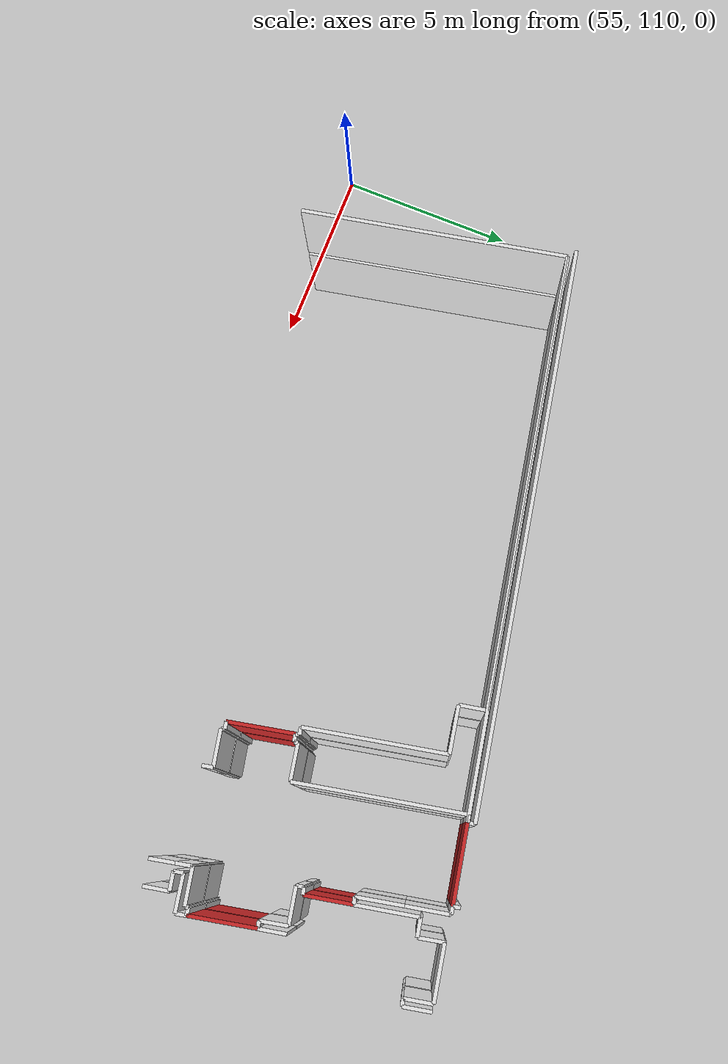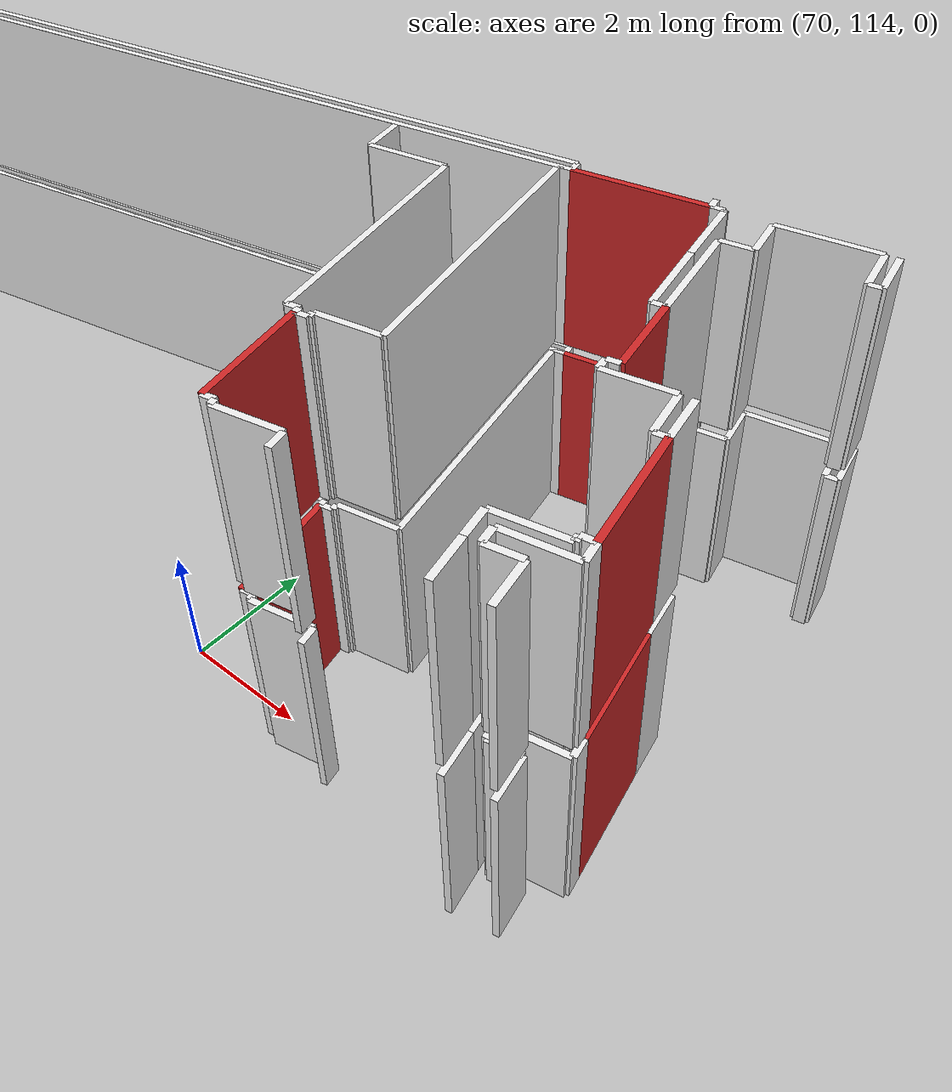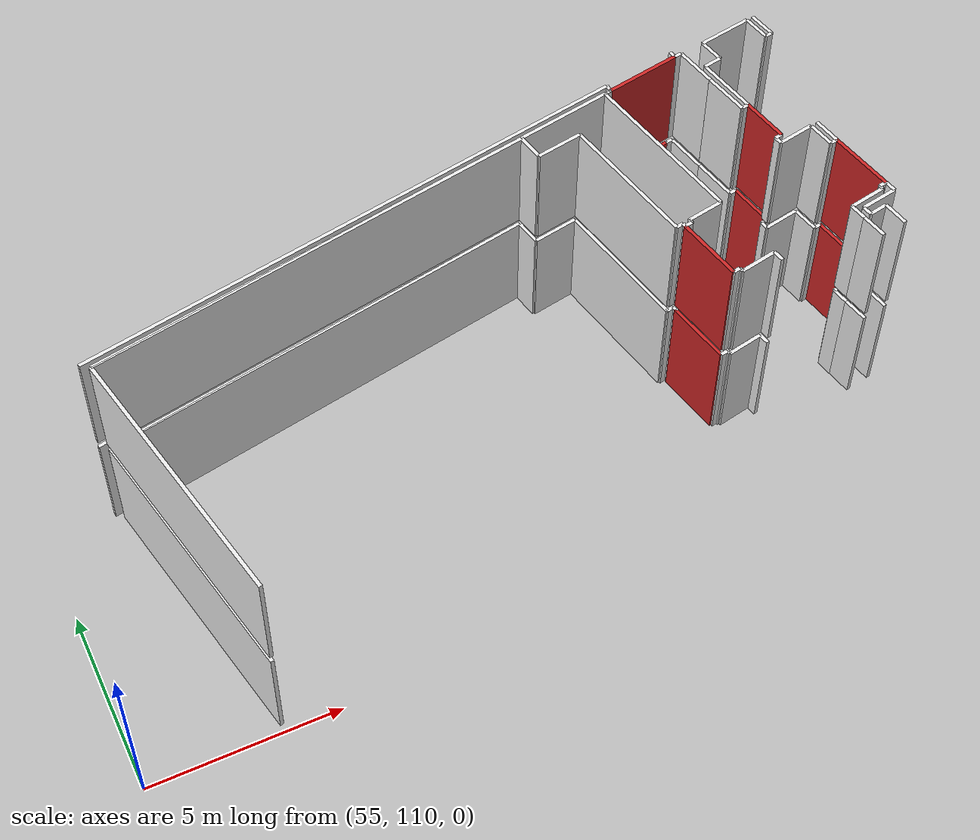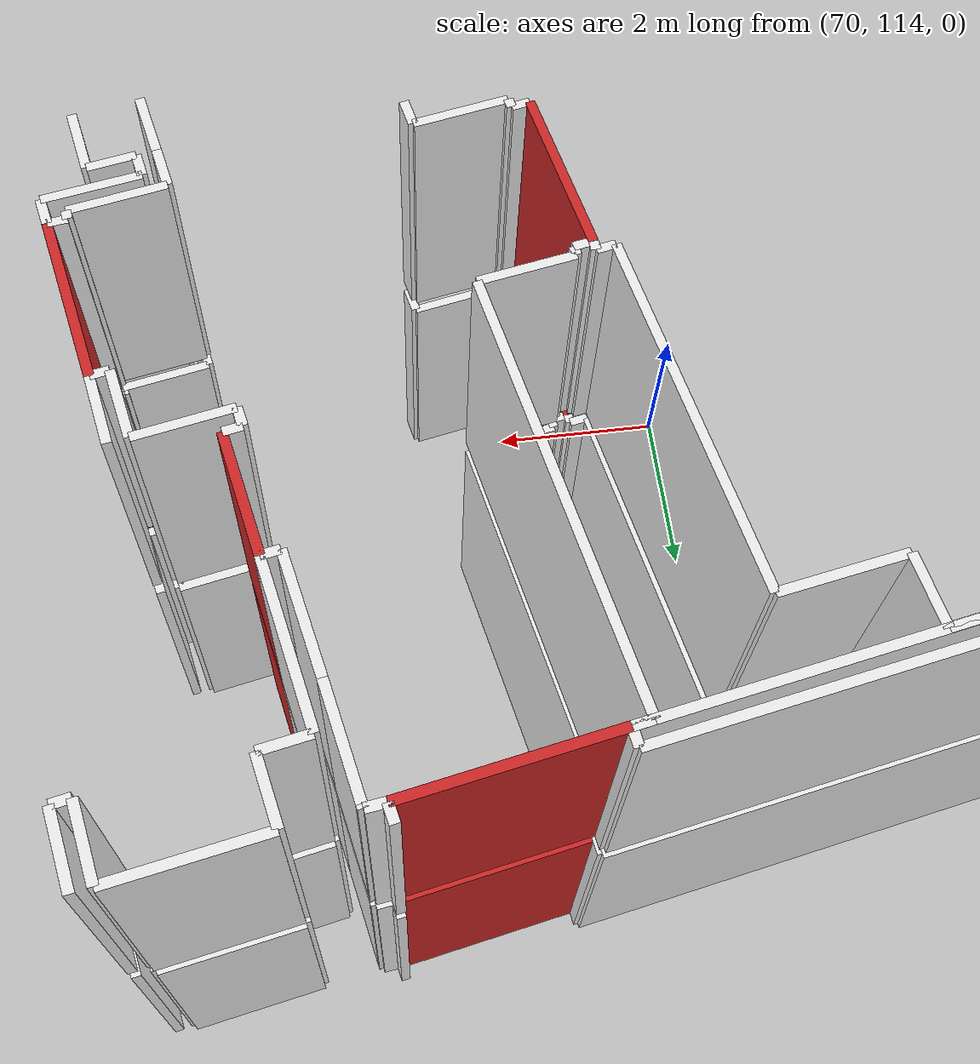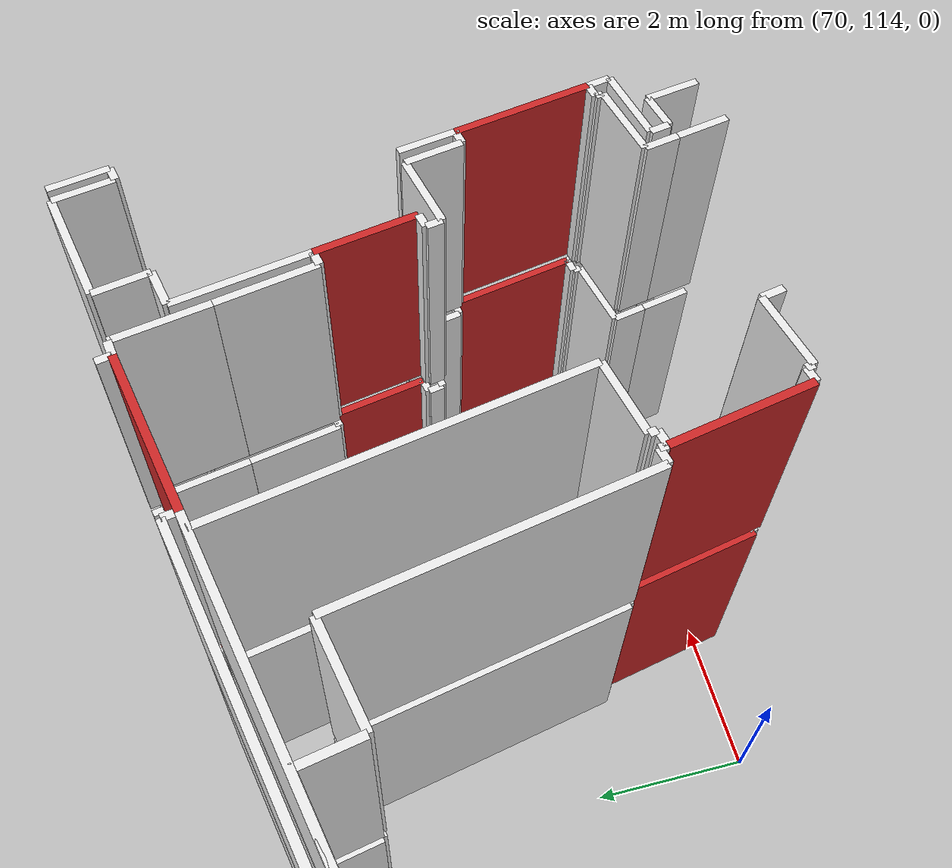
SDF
<sdf version="1.6">
 <world name="default">
  <model name="wall_71.7_114.6_0.0">
   <static>true</static>
   <pose>71.72999999998137 114.55000000004657 1.5 0 0 -1.3690339825092397</pose>
   <link name="link">
    <visual name="visual">
     <geometry><box><size>1.796440926065282 0.1 3</size></box></geometry>
     <material>
      <script><uri>file://media/materials/scripts/gazebo.material</uri><name>Gazebo/Red</name></script>
     </material>
    </visual>
   </link>
  </model>
  <model name="wall_76.5_115.5_0.0">
   <static>true</static>
   <pose>76.53999999997905 115.50500000012107 1.5 0 0 -1.3701434494846443</pose>
   <link name="link">
    <visual name="visual">
     <geometry><box><size>1.8062391868343128 0.1 3</size></box></geometry>
     <material>
      <script><uri>file://media/materials/scripts/gazebo.material</uri><name>Gazebo/Red</name></script>
     </material>
    </visual>
   </link>
  </model>
  <model name="wall_75.1_117.8_0.0">
   <static>true</static>
   <pose>75.06500000000233 117.75500000012107 1.5 0 0 -1.376431060702658</pose>
   <link name="link">
    <visual name="visual">
     <geometry><box><size>1.2943724348298333 0.1 3</size></box></geometry>
     <material>
      <script><uri>file://media/materials/scripts/gazebo.material</uri><name>Gazebo/Red</name></script>
     </material>
    </visual>
   </link>
  </model>
  <model name="wall_73.0_120.5_0.0">
   <static>true</static>
   <pose>73.04000000000815 120.50499999988824 1.5 0 0 0.19646185337495456</pose>
   <link name="link">
    <visual name="visual">
     <geometry><box><size>2.100404722931416 0.1 3</size></box></geometry>
     <material>
      <script><uri>file://media/materials/scripts/gazebo.material</uri><name>Gazebo/Red</name></script>
     </material>
    </visual>
   </link>
  </model>
  <model name="wall_71.5_115.5_0.0">
   <static>true</static>
   <pose>71.5449999999837 115.47999999998137 1.5 0 0 1.6704649797471094</pose>
   <link name="link">
    <visual name="visual">
     <geometry><box><size>0.10049875584145537 0.1 3</size></box></geometry>
     <material>
      <script><uri>file://media/materials/scripts/gazebo.material</uri><name>Gazebo/White</name></script>
     </material>
    </visual>
   </link>
  </model>
  <model name="wall_71.4_115.5_0.0">
   <static>true</static>
   <pose>71.44000000000233 115.51000000000931 1.5 0 0 -2.944197095754793</pose>
   <link name="link">
    <visual name="visual">
     <geometry><box><size>0.20396078041403173 0.1 3</size></box></geometry>
     <material>
      <script><uri>file://media/materials/scripts/gazebo.material</uri><name>Gazebo/White</name></script>
     </material>
    </visual>
   </link>
  </model>
  <model name="wall_71.0_117.4_0.0">
   <static>true</static>
   <pose>70.96500000002561 117.37000000011176 1.5 0 0 1.7676803777493852</pose>
   <link name="link">
    <visual name="visual">
     <geometry><box><size>3.834070943308059 0.1 3</size></box></geometry>
     <material>
      <script><uri>file://media/materials/scripts/gazebo.material</uri><name>Gazebo/White</name></script>
     </material>
    </visual>
   </link>
  </model>
  <model name="wall_70.0_119.1_0.0">
   <static>true</static>
   <pose>69.96500000002561 119.12999999988824 1.5 0 0 -2.9519011013949563</pose>
   <link name="link">
    <visual name="visual">
     <geometry><box><size>1.2728314892817856 0.1 3</size></box></geometry>
     <material>
      <script><uri>file://media/materials/scripts/gazebo.material</uri><name>Gazebo/White</name></script>
     </material>
    </visual>
   </link>
  </model>
  <model name="wall_69.3_119.4_0.0">
   <static>true</static>
   <pose>69.27000000001863 119.375 1.5 0 0 1.760276484581226</pose>
   <link name="link">
    <visual name="visual">
     <geometry><box><size>0.7433034378075905 0.1 3</size></box></geometry>
     <material>
      <script><uri>file://media/materials/scripts/gazebo.material</uri><name>Gazebo/White</name></script>
     </material>
    </visual>
   </link>
  </model>
  <model name="wall_63.1_118.5_0.0">
   <static>true</static>
   <pose>63.14500000001863 118.54500000015832 1.5 0 0 -2.9467391918441352</pose>
   <link name="link">
    <visual name="visual">
     <geometry><box><size>12.343589429346915 0.1 3</size></box></geometry>
     <material>
      <script><uri>file://media/materials/scripts/gazebo.material</uri><name>Gazebo/White</name></script>
     </material>
    </visual>
   </link>
  </model>
  <model name="wall_57.8_113.8_0.0">
   <static>true</static>
   <pose>57.80000000001746 113.78500000014901 1.5 0 0 -1.3742100465085676</pose>
   <link name="link">
    <visual name="visual">
     <geometry><box><size>7.270027510151529 0.1 3</size></box></geometry>
     <material>
      <script><uri>file://media/materials/scripts/gazebo.material</uri><name>Gazebo/White</name></script>
     </material>
    </visual>
   </link>
  </model>
  <model name="wall_76.8_114.5_0.0">
   <static>true</static>
   <pose>76.75 114.47500000009313 1.5 0 0 -1.3667783470430568</pose>
   <link name="link">
    <visual name="visual">
     <geometry><box><size>0.2961418579470187 0.1 3</size></box></geometry>
     <material>
      <script><uri>file://media/materials/scripts/gazebo.material</uri><name>Gazebo/White</name></script>
     </material>
    </visual>
   </link>
  </model>
  <model name="wall_76.3_114.2_0.0">
   <static>true</static>
   <pose>76.28500000000349 114.23500000010245 1.5 0 0 -2.9519790378789845</pose>
   <link name="link">
    <visual name="visual">
     <geometry><box><size>1.0080674580977094 0.1 3</size></box></geometry>
     <material>
      <script><uri>file://media/materials/scripts/gazebo.material</uri><name>Gazebo/White</name></script>
     </material>
    </visual>
   </link>
  </model>
  <model name="wall_75.8_114.0_0.0">
   <static>true</static>
   <pose>75.81500000000233 114.01500000013039 1.5 0 0 -1.3734007667659154</pose>
   <link name="link">
    <visual name="visual">
     <geometry><box><size>0.2549509756887716 0.1 3</size></box></geometry>
     <material>
      <script><uri>file://media/materials/scripts/gazebo.material</uri><name>Gazebo/White</name></script>
     </material>
    </visual>
   </link>
  </model>
  <model name="wall_76.1_113.9_0.0">
   <static>true</static>
   <pose>76.08500000002095 113.94000000017695 1.5 0 0 0.2013171085608308</pose>
   <link name="link">
    <visual name="visual">
     <geometry><box><size>0.5000999900114971 0.1 3</size></box></geometry>
     <material>
      <script><uri>file://media/materials/scripts/gazebo.material</uri><name>Gazebo/White</name></script>
     </material>
    </visual>
   </link>
  </model>
  <model name="wall_76.4_113.7_0.0">
   <static>true</static>
   <pose>76.39500000001863 113.6500000001397 1.5 0 0 -1.3818991459561358</pose>
   <link name="link">
    <visual name="visual">
     <geometry><box><size>0.6923149573923696 0.1 3</size></box></geometry>
     <material>
      <script><uri>file://media/materials/scripts/gazebo.material</uri><name>Gazebo/White</name></script>
     </material>
    </visual>
   </link>
  </model>
  <model name="wall_76.3_116.8_0.0">
   <static>true</static>
   <pose>76.28999999997905 116.75500000012107 1.5 0 0 -1.3813161688905715</pose>
   <link name="link">
    <visual name="visual">
     <geometry><box><size>0.7433034373502634 0.1 3</size></box></geometry>
     <material>
      <script><uri>file://media/materials/scripts/gazebo.material</uri><name>Gazebo/White</name></script>
     </material>
    </visual>
   </link>
  </model>
  <model name="wall_76.5_120.8_0.0">
   <static>true</static>
   <pose>76.51500000001397 120.75499999988824 1.5 0 0 -1.3734007669151658</pose>
   <link name="link">
    <visual name="visual">
     <geometry><box><size>0.764852927043484 0.1 3</size></box></geometry>
     <material>
      <script><uri>file://media/materials/scripts/gazebo.material</uri><name>Gazebo/White</name></script>
     </material>
    </visual>
   </link>
  </model>
  <model name="wall_76.7_120.4_0.0">
   <static>true</static>
   <pose>76.68500000002678 120.39999999990687 1.5 0 0 0.20749622662047904</pose>
   <link name="link">
    <visual name="visual">
     <geometry><box><size>0.19416487839942884 0.1 3</size></box></geometry>
     <material>
      <script><uri>file://media/materials/scripts/gazebo.material</uri><name>Gazebo/White</name></script>
     </material>
    </visual>
   </link>
  </model>
  <model name="wall_76.7_120.8_0.0">
   <static>true</static>
   <pose>76.7050000000163 120.7949999999255 1.5 0 0 1.7681918866746276</pose>
   <link name="link">
    <visual name="visual">
     <geometry><box><size>0.764852927043484 0.1 3</size></box></geometry>
     <material>
      <script><uri>file://media/materials/scripts/gazebo.material</uri><name>Gazebo/White</name></script>
     </material>
    </visual>
   </link>
  </model>
  <model name="wall_74.8_119.2_0.0">
   <static>true</static>
   <pose>74.77499999999418 119.22500000009313 1.5 0 0 1.7658877432748503</pose>
   <link name="link">
    <visual name="visual">
     <geometry><box><size>1.7022925717284638 0.1 3</size></box></geometry>
     <material>
      <script><uri>file://media/materials/scripts/gazebo.material</uri><name>Gazebo/White</name></script>
     </material>
    </visual>
   </link>
  </model>
  <model name="wall_74.9_120.1_0.0">
   <static>true</static>
   <pose>74.85499999998137 120.11000000010245 1.5 0 0 0.2013171085608308</pose>
   <link name="link">
    <visual name="visual">
     <geometry><box><size>0.5000999900114971 0.1 3</size></box></geometry>
     <material>
      <script><uri>file://media/materials/scripts/gazebo.material</uri><name>Gazebo/White</name></script>
     </material>
    </visual>
   </link>
  </model>
  <model name="wall_75.0_120.5_0.0">
   <static>true</static>
   <pose>75.02999999999884 120.5 1.5 0 0 1.7738415440725144</pose>
   <link name="link">
    <visual name="visual">
     <geometry><box><size>0.6942621980075696 0.1 3</size></box></geometry>
     <material>
      <script><uri>file://media/materials/scripts/gazebo.material</uri><name>Gazebo/White</name></script>
     </material>
    </visual>
   </link>
  </model>
  <model name="wall_75.7_121.0_0.0">
   <static>true</static>
   <pose>75.70000000001164 120.98499999986961 1.5 0 0 0.19349440931601616</pose>
   <link name="link">
    <visual name="visual">
     <geometry><box><size>1.508144555394632 0.1 3</size></box></geometry>
     <material>
      <script><uri>file://media/materials/scripts/gazebo.material</uri><name>Gazebo/White</name></script>
     </material>
    </visual>
   </link>
  </model>
  <model name="wall_73.1_113.7_0.0">
   <static>true</static>
   <pose>73.12999999997555 113.66500000003725 1.5 0 0 1.7748143063542596</pose>
   <link name="link">
    <visual name="visual">
     <geometry><box><size>0.2961418579352255 0.1 3</size></box></geometry>
     <material>
      <script><uri>file://media/materials/scripts/gazebo.material</uri><name>Gazebo/White</name></script>
     </material>
    </visual>
   </link>
  </model>
  <model name="wall_72.6_113.7_0.0">
   <static>true</static>
   <pose>72.60999999998603 113.70999999996275 1.5 0 0 -2.9402755450289626</pose>
   <link name="link">
    <visual name="visual">
     <geometry><box><size>1.0001999800229942 0.1 3</size></box></geometry>
     <material>
      <script><uri>file://media/materials/scripts/gazebo.material</uri><name>Gazebo/White</name></script>
     </material>
    </visual>
   </link>
  </model>
  <model name="wall_72.1_113.7_0.0">
   <static>true</static>
   <pose>72.10999999998603 113.65999999991618 1.5 0 0 1.7681918866447774</pose>
   <link name="link">
    <visual name="visual">
     <geometry><box><size>0.10198039036683233 0.1 3</size></box></geometry>
     <material>
      <script><uri>file://media/materials/scripts/gazebo.material</uri><name>Gazebo/White</name></script>
     </material>
    </visual>
   </link>
  </model>
  <model name="wall_72.0_113.7_0.0">
   <static>true</static>
   <pose>72.00499999997555 113.68999999994412 1.5 0 0 -2.9340964269693144</pose>
   <link name="link">
    <visual name="visual">
     <geometry><box><size>0.19416487839942884 0.1 3</size></box></geometry>
     <material>
      <script><uri>file://media/materials/scripts/gazebo.material</uri><name>Gazebo/White</name></script>
     </material>
    </visual>
   </link>
  </model>
  <model name="wall_71.6_115.5_0.0">
   <static>true</static>
   <pose>71.64999999999418 115.45000000018626 1.5 0 0 0.19739556001778746</pose>
   <link name="link">
    <visual name="visual">
     <geometry><box><size>0.20396078056243275 0.1 3</size></box></geometry>
     <material>
      <script><uri>file://media/materials/scripts/gazebo.material</uri><name>Gazebo/White</name></script>
     </material>
    </visual>
   </link>
  </model>
  <model name="wall_71.7_115.5_0.0">
   <static>true</static>
   <pose>71.73999999999069 115.52000000001863 1.5 0 0 1.7681918875402798</pose>
   <link name="link">
    <visual name="visual">
     <geometry><box><size>0.10198038991021388 0.1 3</size></box></geometry>
     <material>
      <script><uri>file://media/materials/scripts/gazebo.material</uri><name>Gazebo/White</name></script>
     </material>
    </visual>
   </link>
  </model>
  <model name="wall_72.2_115.7_0.0">
   <static>true</static>
   <pose>72.22000000000116 115.66499999980442 1.5 0 0 0.19150171840711785</pose>
   <link name="link">
    <visual name="visual">
     <geometry><box><size>0.9982484660926583 0.1 3</size></box></geometry>
     <material>
      <script><uri>file://media/materials/scripts/gazebo.material</uri><name>Gazebo/White</name></script>
     </material>
    </visual>
   </link>
  </model>
  <model name="wall_72.3_118.0_0.0">
   <static>true</static>
   <pose>72.26500000001397 117.98999999999069 1.5 0 0 1.7677606663024836</pose>
   <link name="link">
    <visual name="visual">
     <geometry><box><size>4.547933597123673 0.1 3</size></box></geometry>
     <material>
      <script><uri>file://media/materials/scripts/gazebo.material</uri><name>Gazebo/White</name></script>
     </material>
    </visual>
   </link>
  </model>
  <model name="wall_71.8_120.2_0.0">
   <static>true</static>
   <pose>71.81500000000233 120.23999999999069 1.5 0 0 1.8157749926609448</pose>
   <link name="link">
    <visual name="visual">
     <geometry><box><size>0.041231055842818214 0.1 3</size></box></geometry>
     <material>
      <script><uri>file://media/materials/scripts/gazebo.material</uri><name>Gazebo/White</name></script>
     </material>
    </visual>
   </link>
  </model>
  <model name="wall_71.9_120.3_0.0">
   <static>true</static>
   <pose>71.91000000000349 120.27999999979511 1.5 0 0 0.19739556001778746</pose>
   <link name="link">
    <visual name="visual">
     <geometry><box><size>0.20396078056243275 0.1 3</size></box></geometry>
     <material>
      <script><uri>file://media/materials/scripts/gazebo.material</uri><name>Gazebo/White</name></script>
     </material>
    </visual>
   </link>
  </model>
  <model name="wall_74.2_120.7_0.0">
   <static>true</static>
   <pose>74.1700000000128 120.72500000009313 1.5 0 0 0.14888994887611873</pose>
   <link name="link">
    <visual name="visual">
     <geometry><box><size>0.20223748421176238 0.1 3</size></box></geometry>
     <material>
      <script><uri>file://media/materials/scripts/gazebo.material</uri><name>Gazebo/White</name></script>
     </material>
    </visual>
   </link>
  </model>
  <model name="wall_74.3_120.7_0.0">
   <static>true</static>
   <pose>74.27500000002328 120.72000000020489 1.5 0 0 -1.3258176636680326</pose>
   <link name="link">
    <visual name="visual">
     <geometry><box><size>0.04123105629457602 0.1 3</size></box></geometry>
     <material>
      <script><uri>file://media/materials/scripts/gazebo.material</uri><name>Gazebo/White</name></script>
     </material>
    </visual>
   </link>
  </model>
  <model name="wall_74.4_120.1_0.0">
   <static>true</static>
   <pose>74.39000000001397 120.14000000013039 1.5 0 0 -1.3768371795778953</pose>
   <link name="link">
    <visual name="visual">
     <geometry><box><size>1.1414026459746998 0.1 3</size></box></geometry>
     <material>
      <script><uri>file://media/materials/scripts/gazebo.material</uri><name>Gazebo/White</name></script>
     </material>
    </visual>
   </link>
  </model>
  <model name="wall_74.6_119.0_0.0">
   <static>true</static>
   <pose>74.625 118.96500000008382 1.5 0 0 -1.3702757771145264</pose>
   <link name="link">
    <visual name="visual">
     <geometry><box><size>1.2551493934803852 0.1 3</size></box></geometry>
     <material>
      <script><uri>file://media/materials/scripts/gazebo.material</uri><name>Gazebo/White</name></script>
     </material>
    </visual>
   </link>
  </model>
  <model name="wall_74.8_118.4_0.0">
   <static>true</static>
   <pose>74.84500000000116 118.37000000011176 1.5 0 0 0.20749622662047904</pose>
   <link name="link">
    <visual name="visual">
     <geometry><box><size>0.19416487839942884 0.1 3</size></box></geometry>
     <material>
      <script><uri>file://media/materials/scripts/gazebo.material</uri><name>Gazebo/White</name></script>
     </material>
    </visual>
   </link>
  </model>
  <model name="wall_75.1_117.1_0.0">
   <static>true</static>
   <pose>75.09500000000116 117.10000000009313 1.5 0 0 -2.9340964269693144</pose>
   <link name="link">
    <visual name="visual">
     <geometry><box><size>0.19416487839942884 0.1 3</size></box></geometry>
     <material>
      <script><uri>file://media/materials/scripts/gazebo.material</uri><name>Gazebo/White</name></script>
     </material>
    </visual>
   </link>
  </model>
  <model name="wall_75.0_117.0_0.0">
   <static>true</static>
   <pose>75.01999999998952 116.97999999998137 1.5 0 0 -1.3734007672248605</pose>
   <link name="link">
    <visual name="visual">
     <geometry><box><size>0.2039607807222492 0.1 3</size></box></geometry>
     <material>
      <script><uri>file://media/materials/scripts/gazebo.material</uri><name>Gazebo/White</name></script>
     </material>
    </visual>
   </link>
  </model>
  <model name="wall_75.5_117.0_0.0">
   <static>true</static>
   <pose>75.52999999999884 116.97999999998137 1.5 0 0 0.20131710854919393</pose>
   <link name="link">
    <visual name="visual">
     <geometry><box><size>1.0001999800800263 0.1 3</size></box></geometry>
     <material>
      <script><uri>file://media/materials/scripts/gazebo.material</uri><name>Gazebo/White</name></script>
     </material>
    </visual>
   </link>
  </model>
  <model name="wall_76.1_116.7_0.0">
   <static>true</static>
   <pose>76.09500000000116 116.71500000008382 1.5 0 0 -1.3681376576882938</pose>
   <link name="link">
    <visual name="visual">
     <geometry><box><size>0.7452516353301937 0.1 3</size></box></geometry>
     <material>
      <script><uri>file://media/materials/scripts/gazebo.material</uri><name>Gazebo/White</name></script>
     </material>
    </visual>
   </link>
  </model>
  <model name="wall_76.3_116.4_0.0">
   <static>true</static>
   <pose>76.26499999998487 116.37000000011176 1.5 0 0 0.20749622662047904</pose>
   <link name="link">
    <visual name="visual">
     <geometry><box><size>0.19416487839942884 0.1 3</size></box></geometry>
     <material>
      <script><uri>file://media/materials/scripts/gazebo.material</uri><name>Gazebo/White</name></script>
     </material>
    </visual>
   </link>
  </model>
  <model name="wall_76.6_114.6_0.0">
   <static>true</static>
   <pose>76.61999999999534 114.60499999998137 1.5 0 0 -2.9927027046709793</pose>
   <link name="link">
    <visual name="visual">
     <geometry><box><size>0.20223748415419868 0.1 3</size></box></geometry>
     <material>
      <script><uri>file://media/materials/scripts/gazebo.material</uri><name>Gazebo/White</name></script>
     </material>
    </visual>
   </link>
  </model>
  <model name="wall_76.5_114.5_0.0">
   <static>true</static>
   <pose>76.52999999999884 114.54000000003725 1.5 0 0 -1.3734007666092025</pose>
   <link name="link">
    <visual name="visual">
     <geometry><box><size>0.10198038989879842 0.1 3</size></box></geometry>
     <material>
      <script><uri>file://media/materials/scripts/gazebo.material</uri><name>Gazebo/White</name></script>
     </material>
    </visual>
   </link>
  </model>
  <model name="wall_76.0_114.4_0.0">
   <static>true</static>
   <pose>76.0449999999837 114.39000000013039 1.5 0 0 -2.942255348424875</pose>
   <link name="link">
    <visual name="visual">
     <geometry><box><size>1.0100000000277551 0.1 3</size></box></geometry>
     <material>
      <script><uri>file://media/materials/scripts/gazebo.material</uri><name>Gazebo/White</name></script>
     </material>
    </visual>
   </link>
  </model>
  <model name="wall_75.6_114.1_0.0">
   <static>true</static>
   <pose>75.59500000000116 114.07000000006519 1.5 0 0 -1.3690339823938056</pose>
   <link name="link">
    <visual name="visual">
     <geometry><box><size>0.44911023140809897 0.1 3</size></box></geometry>
     <material>
      <script><uri>file://media/materials/scripts/gazebo.material</uri><name>Gazebo/White</name></script>
     </material>
    </visual>
   </link>
  </model>
  <model name="wall_75.7_113.5_0.0">
   <static>true</static>
   <pose>75.71000000002095 113.51500000013039 1.5 0 0 -1.3648049900768227</pose>
   <link name="link">
    <visual name="visual">
     <geometry><box><size>0.6844705982758308 0.1 3</size></box></geometry>
     <material>
      <script><uri>file://media/materials/scripts/gazebo.material</uri><name>Gazebo/White</name></script>
     </material>
    </visual>
   </link>
  </model>
  <model name="wall_74.1_120.8_0.0">
   <static>true</static>
   <pose>74.05000000001746 120.80499999993481 1.5 0 0 -1.363300100406013</pose>
   <link name="link">
    <visual name="visual">
     <geometry><box><size>0.19416487833047835 0.1 3</size></box></geometry>
     <material>
      <script><uri>file://media/materials/scripts/gazebo.material</uri><name>Gazebo/White</name></script>
     </material>
    </visual>
   </link>
  </model>
  <model name="wall_72.0_120.4_0.0">
   <static>true</static>
   <pose>71.99499999999534 120.39500000001863 1.5 0 0 1.7273982035881303</pose>
   <link name="link">
    <visual name="visual">
     <geometry><box><size>0.1923538410258384 0.1 3</size></box></geometry>
     <material>
      <script><uri>file://media/materials/scripts/gazebo.material</uri><name>Gazebo/White</name></script>
     </material>
    </visual>
   </link>
  </model>
  <model name="wall_64.4_119.0_0.0">
   <static>true</static>
   <pose>64.41499999997905 119.0 1.5 0 0 -2.947122177573041</pose>
   <link name="link">
    <visual name="visual">
     <geometry><box><size>15.42067767650972 0.1 3</size></box></geometry>
     <material>
      <script><uri>file://media/materials/scripts/gazebo.material</uri><name>Gazebo/White</name></script>
     </material>
    </visual>
   </link>
  </model>
  <model name="wall_64.6_118.8_0.0">
   <static>true</static>
   <pose>64.55000000001746 118.82499999995343 1.5 0 0 0.19520342923642736</pose>
   <link name="link">
    <visual name="visual">
     <geometry><box><size>15.208842822445934 0.1 3</size></box></geometry>
     <material>
      <script><uri>file://media/materials/scripts/gazebo.material</uri><name>Gazebo/White</name></script>
     </material>
    </visual>
   </link>
  </model>
  <model name="wall_71.7_114.6_3.2">
   <static>true</static>
   <pose>71.72999999998137 114.55000000004657 4.7 0 0 -1.3690339825092397</pose>
   <link name="link">
    <visual name="visual">
     <geometry><box><size>1.796440926065282 0.1 3</size></box></geometry>
     <material>
      <script><uri>file://media/materials/scripts/gazebo.material</uri><name>Gazebo/Red</name></script>
     </material>
    </visual>
   </link>
  </model>
  <model name="wall_76.5_115.5_3.2">
   <static>true</static>
   <pose>76.53999999997905 115.50500000012107 4.7 0 0 -1.3701434494846443</pose>
   <link name="link">
    <visual name="visual">
     <geometry><box><size>1.8062391868343128 0.1 3</size></box></geometry>
     <material>
      <script><uri>file://media/materials/scripts/gazebo.material</uri><name>Gazebo/Red</name></script>
     </material>
    </visual>
   </link>
  </model>
  <model name="wall_75.1_117.8_3.2">
   <static>true</static>
   <pose>75.06500000000233 117.75500000012107 4.7 0 0 -1.376431060702658</pose>
   <link name="link">
    <visual name="visual">
     <geometry><box><size>1.2943724348298333 0.1 3</size></box></geometry>
     <material>
      <script><uri>file://media/materials/scripts/gazebo.material</uri><name>Gazebo/Red</name></script>
     </material>
    </visual>
   </link>
  </model>
  <model name="wall_73.0_120.5_3.2">
   <static>true</static>
   <pose>73.04000000000815 120.50499999988824 4.7 0 0 0.19646185337495456</pose>
   <link name="link">
    <visual name="visual">
     <geometry><box><size>2.100404722931416 0.1 3</size></box></geometry>
     <material>
      <script><uri>file://media/materials/scripts/gazebo.material</uri><name>Gazebo/Red</name></script>
     </material>
    </visual>
   </link>
  </model>
  <model name="wall_71.5_115.5_3.2">
   <static>true</static>
   <pose>71.5449999999837 115.47999999998137 4.7 0 0 1.6704649797471094</pose>
   <link name="link">
    <visual name="visual">
     <geometry><box><size>0.10049875584145537 0.1 3</size></box></geometry>
     <material>
      <script><uri>file://media/materials/scripts/gazebo.material</uri><name>Gazebo/White</name></script>
     </material>
    </visual>
   </link>
  </model>
  <model name="wall_71.4_115.5_3.2">
   <static>true</static>
   <pose>71.44000000000233 115.51000000000931 4.7 0 0 -2.944197095754793</pose>
   <link name="link">
    <visual name="visual">
     <geometry><box><size>0.20396078041403173 0.1 3</size></box></geometry>
     <material>
      <script><uri>file://media/materials/scripts/gazebo.material</uri><name>Gazebo/White</name></script>
     </material>
    </visual>
   </link>
  </model>
  <model name="wall_71.0_117.4_3.2">
   <static>true</static>
   <pose>70.96500000002561 117.37000000011176 4.7 0 0 1.7676803777493852</pose>
   <link name="link">
    <visual name="visual">
     <geometry><box><size>3.834070943308059 0.1 3</size></box></geometry>
     <material>
      <script><uri>file://media/materials/scripts/gazebo.material</uri><name>Gazebo/White</name></script>
     </material>
    </visual>
   </link>
  </model>
  <model name="wall_70.0_119.1_3.2">
   <static>true</static>
   <pose>69.96500000002561 119.12999999988824 4.7 0 0 -2.9519011013949563</pose>
   <link name="link">
    <visual name="visual">
     <geometry><box><size>1.2728314892817856 0.1 3</size></box></geometry>
     <material>
      <script><uri>file://media/materials/scripts/gazebo.material</uri><name>Gazebo/White</name></script>
     </material>
    </visual>
   </link>
  </model>
  <model name="wall_69.3_119.4_3.2">
   <static>true</static>
   <pose>69.27000000001863 119.375 4.7 0 0 1.760276484581226</pose>
   <link name="link">
    <visual name="visual">
     <geometry><box><size>0.7433034378075905 0.1 3</size></box></geometry>
     <material>
      <script><uri>file://media/materials/scripts/gazebo.material</uri><name>Gazebo/White</name></script>
     </material>
    </visual>
   </link>
  </model>
  <model name="wall_63.1_118.5_3.2">
   <static>true</static>
   <pose>63.14500000001863 118.54500000015832 4.7 0 0 -2.9467391918441352</pose>
   <link name="link">
    <visual name="visual">
     <geometry><box><size>12.343589429346915 0.1 3</size></box></geometry>
     <material>
      <script><uri>file://media/materials/scripts/gazebo.material</uri><name>Gazebo/White</name></script>
     </material>
    </visual>
   </link>
  </model>
  <model name="wall_57.8_113.8_3.2">
   <static>true</static>
   <pose>57.80000000001746 113.78500000014901 4.7 0 0 -1.3742100465085676</pose>
   <link name="link">
    <visual name="visual">
     <geometry><box><size>7.270027510151529 0.1 3</size></box></geometry>
     <material>
      <script><uri>file://media/materials/scripts/gazebo.material</uri><name>Gazebo/White</name></script>
     </material>
    </visual>
   </link>
  </model>
  <model name="wall_76.8_114.5_3.2">
   <static>true</static>
   <pose>76.75 114.47500000009313 4.7 0 0 -1.3667783470430568</pose>
   <link name="link">
    <visual name="visual">
     <geometry><box><size>0.2961418579470187 0.1 3</size></box></geometry>
     <material>
      <script><uri>file://media/materials/scripts/gazebo.material</uri><name>Gazebo/White</name></script>
     </material>
    </visual>
   </link>
  </model>
  <model name="wall_76.3_114.2_3.2">
   <static>true</static>
   <pose>76.28500000000349 114.23500000010245 4.7 0 0 -2.9519790378789845</pose>
   <link name="link">
    <visual name="visual">
     <geometry><box><size>1.0080674580977094 0.1 3</size></box></geometry>
     <material>
      <script><uri>file://media/materials/scripts/gazebo.material</uri><name>Gazebo/White</name></script>
     </material>
    </visual>
   </link>
  </model>
  <model name="wall_75.8_114.0_3.2">
   <static>true</static>
   <pose>75.81500000000233 114.01500000013039 4.7 0 0 -1.3734007667659154</pose>
   <link name="link">
    <visual name="visual">
     <geometry><box><size>0.2549509756887716 0.1 3</size></box></geometry>
     <material>
      <script><uri>file://media/materials/scripts/gazebo.material</uri><name>Gazebo/White</name></script>
     </material>
    </visual>
   </link>
  </model>
  <model name="wall_76.1_113.9_3.2">
   <static>true</static>
   <pose>76.08500000002095 113.94000000017695 4.7 0 0 0.2013171085608308</pose>
   <link name="link">
    <visual name="visual">
     <geometry><box><size>0.5000999900114971 0.1 3</size></box></geometry>
     <material>
      <script><uri>file://media/materials/scripts/gazebo.material</uri><name>Gazebo/White</name></script>
     </material>
    </visual>
   </link>
  </model>
  <model name="wall_76.4_113.7_3.2">
   <static>true</static>
   <pose>76.39500000001863 113.6500000001397 4.7 0 0 -1.3818991459561358</pose>
   <link name="link">
    <visual name="visual">
     <geometry><box><size>0.6923149573923696 0.1 3</size></box></geometry>
     <material>
      <script><uri>file://media/materials/scripts/gazebo.material</uri><name>Gazebo/White</name></script>
     </material>
    </visual>
   </link>
  </model>
  <model name="wall_76.3_116.8_3.2">
   <static>true</static>
   <pose>76.28999999997905 116.75500000012107 4.7 0 0 -1.3813161688905715</pose>
   <link name="link">
    <visual name="visual">
     <geometry><box><size>0.7433034373502634 0.1 3</size></box></geometry>
     <material>
      <script><uri>file://media/materials/scripts/gazebo.material</uri><name>Gazebo/White</name></script>
     </material>
    </visual>
   </link>
  </model>
  <model name="wall_76.5_120.8_3.2">
   <static>true</static>
   <pose>76.51500000001397 120.75499999988824 4.7 0 0 -1.3734007669151658</pose>
   <link name="link">
    <visual name="visual">
     <geometry><box><size>0.764852927043484 0.1 3</size></box></geometry>
     <material>
      <script><uri>file://media/materials/scripts/gazebo.material</uri><name>Gazebo/White</name></script>
     </material>
    </visual>
   </link>
  </model>
  <model name="wall_76.7_120.4_3.2">
   <static>true</static>
   <pose>76.68500000002678 120.39999999990687 4.7 0 0 0.20749622662047904</pose>
   <link name="link">
    <visual name="visual">
     <geometry><box><size>0.19416487839942884 0.1 3</size></box></geometry>
     <material>
      <script><uri>file://media/materials/scripts/gazebo.material</uri><name>Gazebo/White</name></script>
     </material>
    </visual>
   </link>
  </model>
  <model name="wall_76.7_120.8_3.2">
   <static>true</static>
   <pose>76.7050000000163 120.7949999999255 4.7 0 0 1.7681918866746276</pose>
   <link name="link">
    <visual name="visual">
     <geometry><box><size>0.764852927043484 0.1 3</size></box></geometry>
     <material>
      <script><uri>file://media/materials/scripts/gazebo.material</uri><name>Gazebo/White</name></script>
     </material>
    </visual>
   </link>
  </model>
  <model name="wall_74.8_119.2_3.2">
   <static>true</static>
   <pose>74.77499999999418 119.22500000009313 4.7 0 0 1.7658877432748503</pose>
   <link name="link">
    <visual name="visual">
     <geometry><box><size>1.7022925717284638 0.1 3</size></box></geometry>
     <material>
      <script><uri>file://media/materials/scripts/gazebo.material</uri><name>Gazebo/White</name></script>
     </material>
    </visual>
   </link>
  </model>
  <model name="wall_74.9_120.1_3.2">
   <static>true</static>
   <pose>74.85499999998137 120.11000000010245 4.7 0 0 0.2013171085608308</pose>
   <link name="link">
    <visual name="visual">
     <geometry><box><size>0.5000999900114971 0.1 3</size></box></geometry>
     <material>
      <script><uri>file://media/materials/scripts/gazebo.material</uri><name>Gazebo/White</name></script>
     </material>
    </visual>
   </link>
  </model>
  <model name="wall_75.0_120.5_3.2">
   <static>true</static>
   <pose>75.02999999999884 120.5 4.7 0 0 1.7738415440725144</pose>
   <link name="link">
    <visual name="visual">
     <geometry><box><size>0.6942621980075696 0.1 3</size></box></geometry>
     <material>
      <script><uri>file://media/materials/scripts/gazebo.material</uri><name>Gazebo/White</name></script>
     </material>
    </visual>
   </link>
  </model>
  <model name="wall_75.7_121.0_3.2">
   <static>true</static>
   <pose>75.70000000001164 120.98499999986961 4.7 0 0 0.19349440931601616</pose>
   <link name="link">
    <visual name="visual">
     <geometry><box><size>1.508144555394632 0.1 3</size></box></geometry>
     <material>
      <script><uri>file://media/materials/scripts/gazebo.material</uri><name>Gazebo/White</name></script>
     </material>
    </visual>
   </link>
  </model>
  <model name="wall_73.1_113.7_3.2">
   <static>true</static>
   <pose>73.12999999997555 113.66500000003725 4.7 0 0 1.7748143063542596</pose>
   <link name="link">
    <visual name="visual">
     <geometry><box><size>0.2961418579352255 0.1 3</size></box></geometry>
     <material>
      <script><uri>file://media/materials/scripts/gazebo.material</uri><name>Gazebo/White</name></script>
     </material>
    </visual>
   </link>
  </model>
  <model name="wall_72.6_113.7_3.2">
   <static>true</static>
   <pose>72.60999999998603 113.70999999996275 4.7 0 0 -2.9402755450289626</pose>
   <link name="link">
    <visual name="visual">
     <geometry><box><size>1.0001999800229942 0.1 3</size></box></geometry>
     <material>
      <script><uri>file://media/materials/scripts/gazebo.material</uri><name>Gazebo/White</name></script>
     </material>
    </visual>
   </link>
  </model>
  <model name="wall_72.1_113.7_3.2">
   <static>true</static>
   <pose>72.10999999998603 113.65999999991618 4.7 0 0 1.7681918866447774</pose>
   <link name="link">
    <visual name="visual">
     <geometry><box><size>0.10198039036683233 0.1 3</size></box></geometry>
     <material>
      <script><uri>file://media/materials/scripts/gazebo.material</uri><name>Gazebo/White</name></script>
     </material>
    </visual>
   </link>
  </model>
  <model name="wall_72.0_113.7_3.2">
   <static>true</static>
   <pose>72.00499999997555 113.68999999994412 4.7 0 0 -2.9340964269693144</pose>
   <link name="link">
    <visual name="visual">
     <geometry><box><size>0.19416487839942884 0.1 3</size></box></geometry>
     <material>
      <script><uri>file://media/materials/scripts/gazebo.material</uri><name>Gazebo/White</name></script>
     </material>
    </visual>
   </link>
  </model>
  <model name="wall_71.6_115.5_3.2">
   <static>true</static>
   <pose>71.64999999999418 115.45000000018626 4.7 0 0 0.19739556001778746</pose>
   <link name="link">
    <visual name="visual">
     <geometry><box><size>0.20396078056243275 0.1 3</size></box></geometry>
     <material>
      <script><uri>file://media/materials/scripts/gazebo.material</uri><name>Gazebo/White</name></script>
     </material>
    </visual>
   </link>
  </model>
  <model name="wall_71.7_115.5_3.2">
   <static>true</static>
   <pose>71.73999999999069 115.52000000001863 4.7 0 0 1.7681918875402798</pose>
   <link name="link">
    <visual name="visual">
     <geometry><box><size>0.10198038991021388 0.1 3</size></box></geometry>
     <material>
      <script><uri>file://media/materials/scripts/gazebo.material</uri><name>Gazebo/White</name></script>
     </material>
    </visual>
   </link>
  </model>
  <model name="wall_72.2_115.7_3.2">
   <static>true</static>
   <pose>72.22000000000116 115.66499999980442 4.7 0 0 0.19150171840711785</pose>
   <link name="link">
    <visual name="visual">
     <geometry><box><size>0.9982484660926583 0.1 3</size></box></geometry>
     <material>
      <script><uri>file://media/materials/scripts/gazebo.material</uri><name>Gazebo/White</name></script>
     </material>
    </visual>
   </link>
  </model>
  <model name="wall_72.3_118.0_3.2">
   <static>true</static>
   <pose>72.26500000001397 117.98999999999069 4.7 0 0 1.7677606663024836</pose>
   <link name="link">
    <visual name="visual">
     <geometry><box><size>4.547933597123673 0.1 3</size></box></geometry>
     <material>
      <script><uri>file://media/materials/scripts/gazebo.material</uri><name>Gazebo/White</name></script>
     </material>
    </visual>
   </link>
  </model>
  <model name="wall_71.8_120.2_3.2">
   <static>true</static>
   <pose>71.81500000000233 120.23999999999069 4.7 0 0 1.8157749926609448</pose>
   <link name="link">
    <visual name="visual">
     <geometry><box><size>0.041231055842818214 0.1 3</size></box></geometry>
     <material>
      <script><uri>file://media/materials/scripts/gazebo.material</uri><name>Gazebo/White</name></script>
     </material>
    </visual>
   </link>
  </model>
  <model name="wall_71.9_120.3_3.2">
   <static>true</static>
   <pose>71.91000000000349 120.27999999979511 4.7 0 0 0.19739556001778746</pose>
   <link name="link">
    <visual name="visual">
     <geometry><box><size>0.20396078056243275 0.1 3</size></box></geometry>
     <material>
      <script><uri>file://media/materials/scripts/gazebo.material</uri><name>Gazebo/White</name></script>
     </material>
    </visual>
   </link>
  </model>
  <model name="wall_74.2_120.7_3.2">
   <static>true</static>
   <pose>74.1700000000128 120.72500000009313 4.7 0 0 0.14888994887611873</pose>
   <link name="link">
    <visual name="visual">
     <geometry><box><size>0.20223748421176238 0.1 3</size></box></geometry>
     <material>
      <script><uri>file://media/materials/scripts/gazebo.material</uri><name>Gazebo/White</name></script>
     </material>
    </visual>
   </link>
  </model>
  <model name="wall_74.3_120.7_3.2">
   <static>true</static>
   <pose>74.27500000002328 120.72000000020489 4.7 0 0 -1.3258176636680326</pose>
   <link name="link">
    <visual name="visual">
     <geometry><box><size>0.04123105629457602 0.1 3</size></box></geometry>
     <material>
      <script><uri>file://media/materials/scripts/gazebo.material</uri><name>Gazebo/White</name></script>
     </material>
    </visual>
   </link>
  </model>
  <model name="wall_74.4_120.1_3.2">
   <static>true</static>
   <pose>74.39000000001397 120.14000000013039 4.7 0 0 -1.3768371795778953</pose>
   <link name="link">
    <visual name="visual">
     <geometry><box><size>1.1414026459746998 0.1 3</size></box></geometry>
     <material>
      <script><uri>file://media/materials/scripts/gazebo.material</uri><name>Gazebo/White</name></script>
     </material>
    </visual>
   </link>
  </model>
  <model name="wall_74.6_119.0_3.2">
   <static>true</static>
   <pose>74.625 118.96500000008382 4.7 0 0 -1.3702757771145264</pose>
   <link name="link">
    <visual name="visual">
     <geometry><box><size>1.2551493934803852 0.1 3</size></box></geometry>
     <material>
      <script><uri>file://media/materials/scripts/gazebo.material</uri><name>Gazebo/White</name></script>
     </material>
    </visual>
   </link>
  </model>
  <model name="wall_74.8_118.4_3.2">
   <static>true</static>
   <pose>74.84500000000116 118.37000000011176 4.7 0 0 0.20749622662047904</pose>
   <link name="link">
    <visual name="visual">
     <geometry><box><size>0.19416487839942884 0.1 3</size></box></geometry>
     <material>
      <script><uri>file://media/materials/scripts/gazebo.material</uri><name>Gazebo/White</name></script>
     </material>
    </visual>
   </link>
  </model>
  <model name="wall_75.1_117.1_3.2">
   <static>true</static>
   <pose>75.09500000000116 117.10000000009313 4.7 0 0 -2.9340964269693144</pose>
   <link name="link">
    <visual name="visual">
     <geometry><box><size>0.19416487839942884 0.1 3</size></box></geometry>
     <material>
      <script><uri>file://media/materials/scripts/gazebo.material</uri><name>Gazebo/White</name></script>
     </material>
    </visual>
   </link>
  </model>
  <model name="wall_75.0_117.0_3.2">
   <static>true</static>
   <pose>75.01999999998952 116.97999999998137 4.7 0 0 -1.3734007672248605</pose>
   <link name="link">
    <visual name="visual">
     <geometry><box><size>0.2039607807222492 0.1 3</size></box></geometry>
     <material>
      <script><uri>file://media/materials/scripts/gazebo.material</uri><name>Gazebo/White</name></script>
     </material>
    </visual>
   </link>
  </model>
  <model name="wall_75.5_117.0_3.2">
   <static>true</static>
   <pose>75.52999999999884 116.97999999998137 4.7 0 0 0.20131710854919393</pose>
   <link name="link">
    <visual name="visual">
     <geometry><box><size>1.0001999800800263 0.1 3</size></box></geometry>
     <material>
      <script><uri>file://media/materials/scripts/gazebo.material</uri><name>Gazebo/White</name></script>
     </material>
    </visual>
   </link>
  </model>
  <model name="wall_76.1_116.7_3.2">
   <static>true</static>
   <pose>76.09500000000116 116.71500000008382 4.7 0 0 -1.3681376576882938</pose>
   <link name="link">
    <visual name="visual">
     <geometry><box><size>0.7452516353301937 0.1 3</size></box></geometry>
     <material>
      <script><uri>file://media/materials/scripts/gazebo.material</uri><name>Gazebo/White</name></script>
     </material>
    </visual>
   </link>
  </model>
  <model name="wall_76.3_116.4_3.2">
   <static>true</static>
   <pose>76.26499999998487 116.37000000011176 4.7 0 0 0.20749622662047904</pose>
   <link name="link">
    <visual name="visual">
     <geometry><box><size>0.19416487839942884 0.1 3</size></box></geometry>
     <material>
      <script><uri>file://media/materials/scripts/gazebo.material</uri><name>Gazebo/White</name></script>
     </material>
    </visual>
   </link>
  </model>
  <model name="wall_76.6_114.6_3.2">
   <static>true</static>
   <pose>76.61999999999534 114.60499999998137 4.7 0 0 -2.9927027046709793</pose>
   <link name="link">
    <visual name="visual">
     <geometry><box><size>0.20223748415419868 0.1 3</size></box></geometry>
     <material>
      <script><uri>file://media/materials/scripts/gazebo.material</uri><name>Gazebo/White</name></script>
     </material>
    </visual>
   </link>
  </model>
  <model name="wall_76.5_114.5_3.2">
   <static>true</static>
   <pose>76.52999999999884 114.54000000003725 4.7 0 0 -1.3734007666092025</pose>
   <link name="link">
    <visual name="visual">
     <geometry><box><size>0.10198038989879842 0.1 3</size></box></geometry>
     <material>
      <script><uri>file://media/materials/scripts/gazebo.material</uri><name>Gazebo/White</name></script>
     </material>
    </visual>
   </link>
  </model>
  <model name="wall_76.0_114.4_3.2">
   <static>true</static>
   <pose>76.0449999999837 114.39000000013039 4.7 0 0 -2.942255348424875</pose>
   <link name="link">
    <visual name="visual">
     <geometry><box><size>1.0100000000277551 0.1 3</size></box></geometry>
     <material>
      <script><uri>file://media/materials/scripts/gazebo.material</uri><name>Gazebo/White</name></script>
     </material>
    </visual>
   </link>
  </model>
  <model name="wall_75.6_114.1_3.2">
   <static>true</static>
   <pose>75.59500000000116 114.07000000006519 4.7 0 0 -1.3690339823938056</pose>
   <link name="link">
    <visual name="visual">
     <geometry><box><size>0.44911023140809897 0.1 3</size></box></geometry>
     <material>
      <script><uri>file://media/materials/scripts/gazebo.material</uri><name>Gazebo/White</name></script>
     </material>
    </visual>
   </link>
  </model>
  <model name="wall_75.7_113.5_3.2">
   <static>true</static>
   <pose>75.71000000002095 113.51500000013039 4.7 0 0 -1.3648049900768227</pose>
   <link name="link">
    <visual name="visual">
     <geometry><box><size>0.6844705982758308 0.1 3</size></box></geometry>
     <material>
      <script><uri>file://media/materials/scripts/gazebo.material</uri><name>Gazebo/White</name></script>
     </material>
    </visual>
   </link>
  </model>
  <model name="wall_74.1_120.8_3.2">
   <static>true</static>
   <pose>74.05000000001746 120.80499999993481 4.7 0 0 -1.363300100406013</pose>
   <link name="link">
    <visual name="visual">
     <geometry><box><size>0.19416487833047835 0.1 3</size></box></geometry>
     <material>
      <script><uri>file://media/materials/scripts/gazebo.material</uri><name>Gazebo/White</name></script>
     </material>
    </visual>
   </link>
  </model>
  <model name="wall_72.0_120.4_3.2">
   <static>true</static>
   <pose>71.99499999999534 120.39500000001863 4.7 0 0 1.7273982035881303</pose>
   <link name="link">
    <visual name="visual">
     <geometry><box><size>0.1923538410258384 0.1 3</size></box></geometry>
     <material>
      <script><uri>file://media/materials/scripts/gazebo.material</uri><name>Gazebo/White</name></script>
     </material>
    </visual>
   </link>
  </model>
  <model name="wall_64.4_119.0_3.2">
   <static>true</static>
   <pose>64.41499999997905 119.0 4.7 0 0 -2.947122177573041</pose>
   <link name="link">
    <visual name="visual">
     <geometry><box><size>15.42067767650972 0.1 3</size></box></geometry>
     <material>
      <script><uri>file://media/materials/scripts/gazebo.material</uri><name>Gazebo/White</name></script>
     </material>
    </visual>
   </link>
  </model>
  <model name="wall_64.6_118.8_3.2">
   <static>true</static>
   <pose>64.55000000001746 118.82499999995343 4.7 0 0 0.19520342923642736</pose>
   <link name="link">
    <visual name="visual">
     <geometry><box><size>15.208842822445934 0.1 3</size></box></geometry>
     <material>
      <script><uri>file://media/materials/scripts/gazebo.material</uri><name>Gazebo/White</name></script>
     </material>
    </visual>
   </link>
  </model>
 </world>
</sdf>
